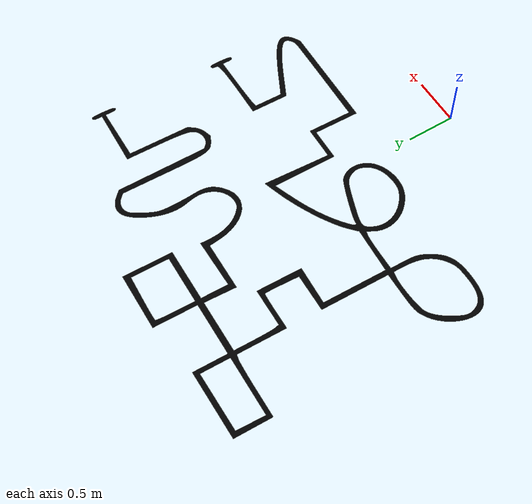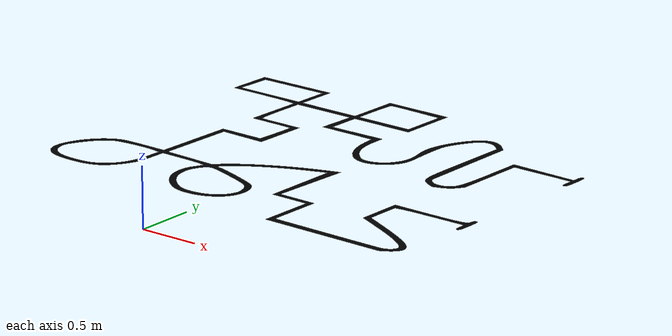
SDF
<sdf version='1.10'>
  <world name='default'>
    <physics type='ode'>
      <max_step_size>0.0040000000000000001</max_step_size>
      <real_time_factor>1</real_time_factor>
      <real_time_update_rate>250</real_time_update_rate>
    </physics>
    <plugin name='gz::sim::systems::Physics' filename='gz-sim-physics-system'/>
    <plugin name='gz::sim::systems::UserCommands' filename='gz-sim-user-commands-system'/>
    <plugin name='gz::sim::systems::SceneBroadcaster' filename='gz-sim-scene-broadcaster-system'/>
    <plugin name='gz::sim::systems::Contact' filename='gz-sim-contact-system'/>
    <plugin name='gz::sim::systems::Imu' filename='gz-sim-imu-system'/>
    <plugin name='gz::sim::systems::Magnetometer' filename='gz-sim-magnetometer-system'/>
    <plugin name='gz::sim::systems::Altimeter' filename='gz-sim-altimeter-system'/>
    <plugin name='gz::sim::systems::NavSat' filename='gz-sim-navsat-system'/>
    <plugin name='gz::sim::systems::Sensors' filename='gz-sim-sensors-system'>
      <render_engine>ogre2</render_engine>
    </plugin>
    <gui fullscreen='false'>
      <plugin name='3D View' filename='GzScene3D'>
        <gz-gui>
          <title>3D View</title>
          <property type='bool' key='showTitleBar'>0</property>
          <property type='string' key='state'>docked</property>
        </gz-gui>
        <engine>ogre2</engine>
        <scene>scene</scene>
        <ambient_light>0.5984631152222222 0.5984631152222222 0.5984631152222222</ambient_light>
        <background_color>0.8984631152222222 0.8984631152222222 0.8984631152222222</background_color>
        <camera_pose>-6 0 6 0 0.5 0</camera_pose>
      </plugin>
      <plugin name='World control' filename='WorldControl'>
        <gz-gui>
          <title>World control</title>
          <property type='bool' key='showTitleBar'>0</property>
          <property type='bool' key='resizable'>0</property>
          <property type='double' key='height'>72</property>
          <property type='double' key='width'>121</property>
          <property type='double' key='z'>1</property>
          <property type='string' key='state'>floating</property>
          <anchors target='3D View'>
            <line own='left' target='left'/>
            <line own='bottom' target='bottom'/>
          </anchors>
        </gz-gui>
        <play_pause>1</play_pause>
        <step>1</step>
        <start_paused>1</start_paused>
      </plugin>
      <plugin name='World stats' filename='WorldStats'>
        <gz-gui>
          <title>World stats</title>
          <property type='bool' key='showTitleBar'>0</property>
          <property type='bool' key='resizable'>0</property>
          <property type='double' key='height'>110</property>
          <property type='double' key='width'>290</property>
          <property type='double' key='z'>1</property>
          <property type='string' key='state'>floating</property>
          <anchors target='3D View'>
            <line own='right' target='right'/>
            <line own='bottom' target='bottom'/>
          </anchors>
        </gz-gui>
        <sim_time>1</sim_time>
        <real_time>1</real_time>
        <real_time_factor>1</real_time_factor>
        <iterations>1</iterations>
      </plugin>
    </gui>
    <gravity>0 0 -9.8000000000000007</gravity>
    <magnetic_field>6.0000000000000002e-06 2.3e-05 -4.1999999999999998e-05</magnetic_field>
    <atmosphere type='adiabatic'/>
    <spherical_coordinates>
      <surface_model>EARTH_WGS84</surface_model>
      <latitude_deg>39.79480109851339</latitude_deg>
      <longitude_deg>-84.08631702793322</longitude_deg>
      <elevation>265.2</elevation>
      <heading_deg>0</heading_deg>
    </spherical_coordinates>
    <scene>
      <grid>false</grid>
      <ambient>0.400000006 0.400000006 0.400000006 1</ambient>
      <background>0.699999988 0.699999988 0.699999988 1</background>
      <shadows>false</shadows>
    </scene>

 <model name='Raceway_1'>
    <pose>0 2.245 0 0 0 1.55</pose>
    <self_collide>false</self_collide>
    <static>true</static>
    <link name='Raceway_1/Base'>
      <collision name="collision">
        <pose>0 0 0 0 0 0</pose>
        <geometry>
            <plane>
                <normal>0 0 1</normal>
                <size>100 100</size>
            </plane>
        </geometry>
      </collision>
      <visual name='TrackVisual'>
        <pose>0 0 -0.014 0 0 0</pose>
        <geometry>
          <mesh>
            <scale>0.35 0.35 0.35</scale>
            <uri>model://../tracks/track1_s200.dae</uri>
          </mesh>
        </geometry>
      </visual>
    </link>
  </model>

    <light name='sunUTC' type='directional'>
      <pose>0 0 500 0 0 0</pose>
      <cast_shadows>false</cast_shadows>
      <intensity>1</intensity>
      <direction>0.001 0.625 -0.78000000000000003</direction>
      <diffuse>0.903999984 0.903999984 0.903999984 1</diffuse>
      <specular>0.270999998 0.270999998 0.270999998 1</specular>
      <attenuation>
        <range>2000</range>
        <linear>0</linear>
        <constant>1</constant>
        <quadratic>0</quadratic>
      </attenuation>
      <spot>
        <inner_angle>0</inner_angle>
        <outer_angle>0</outer_angle>
        <falloff>0</falloff>
      </spot>
    </light>
  </world>
</sdf>
